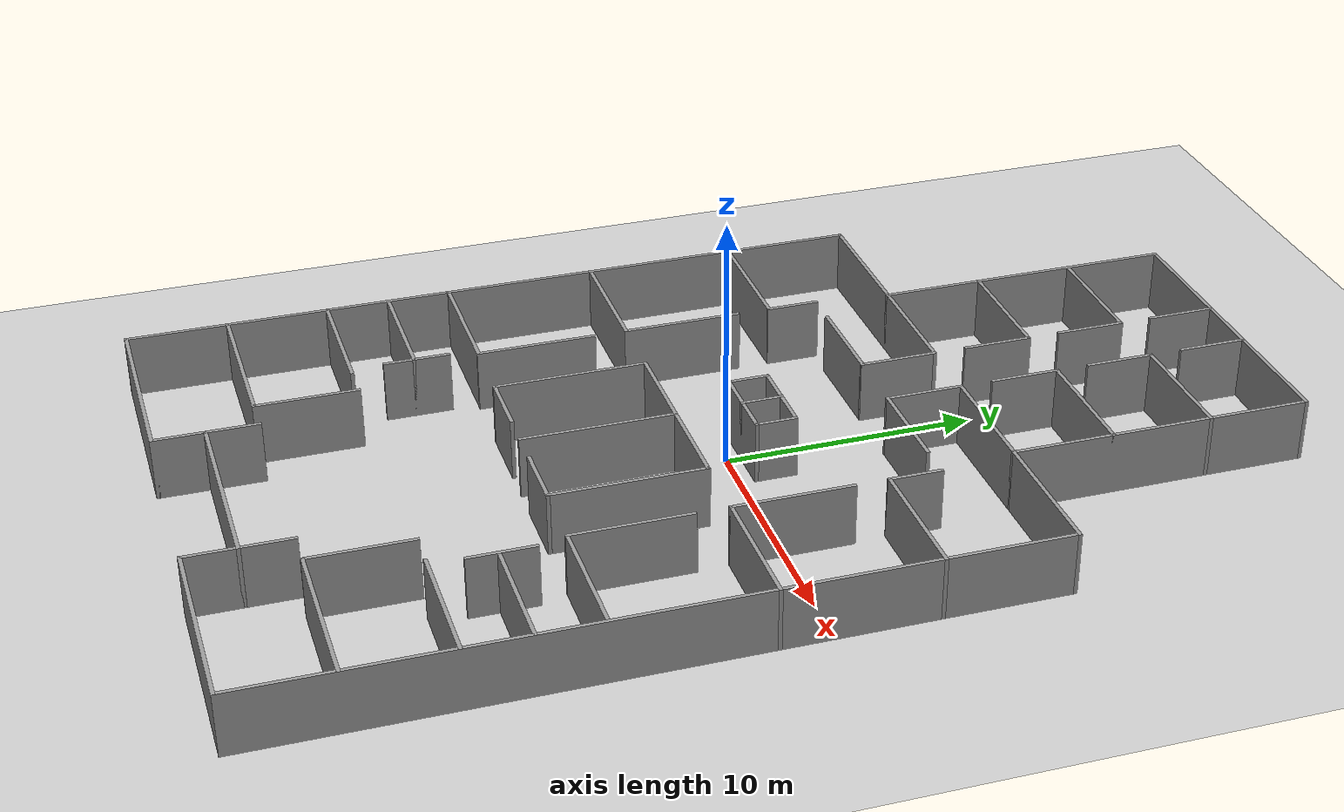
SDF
<sdf version="1.6">
 <world name="default">
  <light name="sun" type="directional">
   <pose>0 0 10 0 -0 0</pose>
   <diffuse>0.8 0.8 0.8 1</diffuse>
   <specular>0.2 0.2 0.2 1</specular>
   <attenuation>
    <range>1000</range>
    <constant>0.9</constant>
    <linear>0.01</linear>
    <quadratic>0.001</quadratic>
   </attenuation>
   <direction>-0.5 0.1 -0.9</direction>
  </light>
  <model name="ground_plane">
   <static>1</static>
   <link name="link">
    <collision name="collision">
     <geometry><plane><normal>0 0 1</normal><size>100 100</size></plane></geometry>
     <surface>
      <contact><collide_bitmask>65535</collide_bitmask></contact>
      <friction><ode><mu>100</mu><mu2>50</mu2></ode></friction>
     </surface>
    </collision>
    <visual name="visual">
     <cast_shadows>0</cast_shadows>
     <geometry><plane><normal>0 0 1</normal><size>100 100</size></plane></geometry>
     <material>
      <script><uri>file://media/materials/scripts/gazebo.material</uri><name>Gazebo/Grey</name></script>
     </material>
    </visual>
   </link>
  </model>
  <gravity>0 0 -9.8</gravity>
  <magnetic_field>6e-06 2.3e-05 -4.2e-05</magnetic_field>
  <atmosphere type="adiabatic"/>
  <physics name="default_physics" default="0" type="ode">
   <max_step_size>0.001</max_step_size>
   <real_time_factor>1</real_time_factor>
   <real_time_update_rate>1000</real_time_update_rate>
  </physics>
  <scene><ambient>0.4 0.4 0.4 1</ambient><background>0.7 0.7 0.7 1</background><shadows>1</shadows></scene>
  <audio><device>default</device></audio>
  <spherical_coordinates>
   <surface_model>EARTH_WGS84</surface_model>
   <latitude_deg>0</latitude_deg>
   <longitude_deg>0</longitude_deg>
   <elevation>0</elevation>
   <heading_deg>0</heading_deg>
  </spherical_coordinates>
  <model name="hospital_02">
   <link name="Wall_107">
    <collision name="Wall_107_Collision">
     <geometry><box><size>6.15 0.15 2.5</size></box></geometry>
     <pose>0 0 1.25 0 -0 0</pose>
    </collision>
    <visual name="Wall_107_Visual">
     <pose>0 0 1.25 0 -0 0</pose>
     <geometry><box><size>6.15 0.15 2.5</size></box></geometry>
     <material>
      <script><uri>file://media/materials/scripts/gazebo.material</uri><name>Gazebo/Grey</name></script>
      <ambient>1 1 1 1</ambient>
     </material>
     <meta><layer>0</layer></meta>
    </visual>
    <pose>-4 -5 0 0 -0 -1.5708</pose>
   </link>
   <link name="Wall_109">
    <collision name="Wall_109_Collision">
     <geometry><box><size>2.8 0.15 2.5</size></box></geometry>
     <pose>0 0 1.25 0 -0 0</pose>
    </collision>
    <visual name="Wall_109_Visual">
     <pose>0 0 1.25 0 -0 0</pose>
     <geometry><box><size>2.8 0.15 2.5</size></box></geometry>
     <material>
      <script><uri>file://media/materials/scripts/gazebo.material</uri><name>Gazebo/Grey</name></script>
      <ambient>1 1 1 1</ambient>
     </material>
     <meta><layer>0</layer></meta>
    </visual>
    <pose>-2.675 -8 0 0 -0 0</pose>
   </link>
   <link name="Wall_111">
    <collision name="Wall_111_Collision">
     <geometry><box><size>6.15 0.15 2.5</size></box></geometry>
     <pose>0 0 1.25 0 -0 0</pose>
    </collision>
    <visual name="Wall_111_Visual">
     <pose>0 0 1.25 0 -0 0</pose>
     <geometry><box><size>6.15 0.15 2.5</size></box></geometry>
     <material>
      <script><uri>file://media/materials/scripts/gazebo.material</uri><name>Gazebo/Grey</name></script>
      <ambient>1 1 1 1</ambient>
     </material>
     <meta><layer>0</layer></meta>
    </visual>
    <pose>4 -5 0 0 -0 -1.5708</pose>
   </link>
   <link name="Wall_113">
    <collision name="Wall_113_Collision">
     <geometry><box><size>2.8 0.15 2.5</size></box></geometry>
     <pose>0 0 1.25 0 -0 0</pose>
    </collision>
    <visual name="Wall_113_Visual">
     <pose>0 0 1.25 0 -0 0</pose>
     <geometry><box><size>2.8 0.15 2.5</size></box></geometry>
     <material>
      <script><uri>file://media/materials/scripts/gazebo.material</uri><name>Gazebo/Grey</name></script>
      <ambient>1 1 1 1</ambient>
     </material>
     <meta><layer>0</layer></meta>
    </visual>
    <pose>2.675 -8 0 0 -0 3.14159</pose>
   </link>
   <link name="Wall_117">
    <collision name="Wall_117_Collision">
     <geometry><box><size>3.45 0.15 2.5</size></box></geometry>
     <pose>0 0 1.25 0 -0 0</pose>
    </collision>
    <visual name="Wall_117_Visual">
     <pose>0 0 1.25 0 -0 0</pose>
     <geometry><box><size>3.45 0.15 2.5</size></box></geometry>
     <material>
      <script><uri>file://media/materials/scripts/gazebo.material</uri><name>Gazebo/Grey</name></script>
      <ambient>1 1 1 1</ambient>
     </material>
     <meta><layer>0</layer></meta>
    </visual>
    <pose>0 2.2 0 0 -0 0</pose>
   </link>
   <link name="Wall_119">
    <collision name="Wall_119_Collision">
     <geometry><box><size>3.45 0.15 2.5</size></box></geometry>
     <pose>0 0 1.25 0 -0 0</pose>
    </collision>
    <visual name="Wall_119_Visual">
     <pose>0 0 1.25 0 -0 0</pose>
     <geometry><box><size>3.45 0.15 2.5</size></box></geometry>
     <material>
      <script><uri>file://media/materials/scripts/gazebo.material</uri><name>Gazebo/Grey</name></script>
      <ambient>1 1 1 1</ambient>
     </material>
     <meta><layer>0</layer></meta>
    </visual>
    <pose>0 0.65 0 0 -0 0</pose>
   </link>
   <link name="Wall_121">
    <collision name="Wall_121_Collision">
     <geometry><box><size>1.7 0.15 2.5</size></box></geometry>
     <pose>0 0 1.25 0 -0 0</pose>
    </collision>
    <visual name="Wall_121_Visual">
     <pose>0 0 1.25 0 -0 0</pose>
     <geometry><box><size>1.7 0.15 2.5</size></box></geometry>
     <material>
      <script><uri>file://media/materials/scripts/gazebo.material</uri><name>Gazebo/Grey</name></script>
      <ambient>1 1 1 1</ambient>
     </material>
     <meta><layer>0</layer></meta>
    </visual>
    <pose>0 1.425 0 0 -0 -1.5708</pose>
   </link>
   <link name="Wall_123">
    <collision name="Wall_123_Collision">
     <geometry><box><size>1.7 0.15 2.5</size></box></geometry>
     <pose>0 0 1.25 0 -0 0</pose>
    </collision>
    <visual name="Wall_123_Visual">
     <pose>0 0 1.25 0 -0 0</pose>
     <geometry><box><size>1.7 0.15 2.5</size></box></geometry>
     <material>
      <script><uri>file://media/materials/scripts/gazebo.material</uri><name>Gazebo/Grey</name></script>
      <ambient>1 1 1 1</ambient>
     </material>
     <meta><layer>0</layer></meta>
    </visual>
    <pose>-1.65 1.425 0 0 -0 -1.5708</pose>
   </link>
   <link name="Wall_125">
    <collision name="Wall_125_Collision">
     <geometry><box><size>1.7 0.15 2.5</size></box></geometry>
     <pose>0 0 1.25 0 -0 0</pose>
    </collision>
    <visual name="Wall_125_Visual">
     <pose>0 0 1.25 0 -0 0</pose>
     <geometry><box><size>1.7 0.15 2.5</size></box></geometry>
     <material>
      <script><uri>file://media/materials/scripts/gazebo.material</uri><name>Gazebo/Grey</name></script>
      <ambient>1 1 1 1</ambient>
     </material>
     <meta><layer>0</layer></meta>
    </visual>
    <pose>1.65 1.425 0 0 -0 -1.5708</pose>
   </link>
   <link name="Wall_131">
    <collision name="Wall_131_Collision">
     <geometry><box><size>10.8 0.15 2.5</size></box></geometry>
     <pose>0 0 1.25 0 -0 0</pose>
    </collision>
    <visual name="Wall_131_Visual">
     <pose>0 0 1.25 0 -0 0</pose>
     <geometry><box><size>10.8 0.15 2.5</size></box></geometry>
     <material>
      <script><uri>file://media/materials/scripts/gazebo.material</uri><name>Gazebo/Grey</name></script>
      <ambient>1 1 1 1</ambient>
     </material>
     <meta><layer>0</layer></meta>
    </visual>
    <pose>-6.675 9 0 0 -0 0</pose>
   </link>
   <link name="Wall_133">
    <collision name="Wall_133_Collision">
     <geometry><box><size>10.8 0.15 2.5</size></box></geometry>
     <pose>0 0 1.25 0 -0 0</pose>
    </collision>
    <visual name="Wall_133_Visual">
     <pose>0 0 1.25 0 -0 0</pose>
     <geometry><box><size>10.8 0.15 2.5</size></box></geometry>
     <material>
      <script><uri>file://media/materials/scripts/gazebo.material</uri><name>Gazebo/Grey</name></script>
      <ambient>1 1 1 1</ambient>
     </material>
     <meta><layer>0</layer></meta>
    </visual>
    <pose>6.675 9 0 0 -0 3.14159</pose>
   </link>
   <link name="Wall_135">
    <collision name="Wall_135_Collision">
     <geometry><box><size>5.15 0.15 2.5</size></box></geometry>
     <pose>0 0 1.25 0 -0 0</pose>
    </collision>
    <visual name="Wall_135_Visual">
     <pose>0 0 1.25 0 -0 0</pose>
     <geometry><box><size>5.15 0.15 2.5</size></box></geometry>
     <material>
      <script><uri>file://media/materials/scripts/gazebo.material</uri><name>Gazebo/Grey</name></script>
      <ambient>1 1 1 1</ambient>
     </material>
     <meta><layer>0</layer></meta>
    </visual>
    <pose>-3.85 13 0 0 -0 0</pose>
   </link>
   <link name="Wall_137">
    <collision name="Wall_137_Collision">
     <geometry><box><size>4.15 0.15 2.5</size></box></geometry>
     <pose>0 0 1.25 0 -0 0</pose>
    </collision>
    <visual name="Wall_137_Visual">
     <pose>0 0 1.25 0 -0 0</pose>
     <geometry><box><size>4.15 0.15 2.5</size></box></geometry>
     <material>
      <script><uri>file://media/materials/scripts/gazebo.material</uri><name>Gazebo/Grey</name></script>
      <ambient>1 1 1 1</ambient>
     </material>
     <meta><layer>0</layer></meta>
    </visual>
    <pose>-6.35 11 0 0 -0 -1.5708</pose>
   </link>
   <link name="Wall_139">
    <collision name="Wall_139_Collision">
     <geometry><box><size>2.8 0.15 2.5</size></box></geometry>
     <pose>0 0 1.25 0 -0 0</pose>
    </collision>
    <visual name="Wall_139_Visual">
     <pose>0 0 1.25 0 -0 0</pose>
     <geometry><box><size>2.8 0.15 2.5</size></box></geometry>
     <material>
      <script><uri>file://media/materials/scripts/gazebo.material</uri><name>Gazebo/Grey</name></script>
      <ambient>1 1 1 1</ambient>
     </material>
     <meta><layer>0</layer></meta>
    </visual>
    <pose>-1.35 11.675 0 0 -0 -1.5708</pose>
   </link>
   <link name="Wall_143">
    <collision name="Wall_143_Collision">
     <geometry><box><size>5.15 0.15 2.5</size></box></geometry>
     <pose>0 0 1.25 0 -0 0</pose>
    </collision>
    <visual name="Wall_143_Visual">
     <pose>0 0 1.25 0 -0 0</pose>
     <geometry><box><size>5.15 0.15 2.5</size></box></geometry>
     <material>
      <script><uri>file://media/materials/scripts/gazebo.material</uri><name>Gazebo/Grey</name></script>
      <ambient>1 1 1 1</ambient>
     </material>
     <meta><layer>0</layer></meta>
    </visual>
    <pose>-3.85 17 0 0 -0 0</pose>
   </link>
   <link name="Wall_145">
    <collision name="Wall_145_Collision">
     <geometry><box><size>2.8 0.15 2.5</size></box></geometry>
     <pose>0 0 1.25 0 -0 0</pose>
    </collision>
    <visual name="Wall_145_Visual">
     <pose>0 0 1.25 0 -0 0</pose>
     <geometry><box><size>2.8 0.15 2.5</size></box></geometry>
     <material>
      <script><uri>file://media/materials/scripts/gazebo.material</uri><name>Gazebo/Grey</name></script>
      <ambient>1 1 1 1</ambient>
     </material>
     <meta><layer>0</layer></meta>
    </visual>
    <pose>-1.35 15.675 0 0 -0 -1.5708</pose>
   </link>
   <link name="Wall_149">
    <collision name="Wall_149_Collision">
     <geometry><box><size>12.85 0.15 2.5</size></box></geometry>
     <pose>0 0 1.25 0 -0 0</pose>
    </collision>
    <visual name="Wall_149_Visual">
     <pose>0 0 1.25 0 -0 0</pose>
     <geometry><box><size>12.85 0.15 2.5</size></box></geometry>
     <material>
      <script><uri>file://media/materials/scripts/gazebo.material</uri><name>Gazebo/Grey</name></script>
      <ambient>1 1 1 1</ambient>
     </material>
     <meta><layer>0</layer></meta>
    </visual>
    <pose>0 21 0 0 -0 0</pose>
   </link>
   <link name="Wall_151">
    <collision name="Wall_151_Collision">
     <geometry><box><size>2.8 0.15 2.5</size></box></geometry>
     <pose>0 0 1.25 0 -0 0</pose>
    </collision>
    <visual name="Wall_151_Visual">
     <pose>0 0 1.25 0 -0 0</pose>
     <geometry><box><size>2.8 0.15 2.5</size></box></geometry>
     <material>
      <script><uri>file://media/materials/scripts/gazebo.material</uri><name>Gazebo/Grey</name></script>
      <ambient>1 1 1 1</ambient>
     </material>
     <meta><layer>0</layer></meta>
    </visual>
    <pose>-1.35 19.675 0 0 -0 -1.5708</pose>
   </link>
   <link name="Wall_153">
    <collision name="Wall_153_Collision">
     <geometry><box><size>12.15 0.15 2.5</size></box></geometry>
     <pose>0 0 1.25 0 -0 0</pose>
    </collision>
    <visual name="Wall_153_Visual">
     <pose>0 0 1.25 0 -0 0</pose>
     <geometry><box><size>12.15 0.15 2.5</size></box></geometry>
     <material>
      <script><uri>file://media/materials/scripts/gazebo.material</uri><name>Gazebo/Grey</name></script>
      <ambient>1 1 1 1</ambient>
     </material>
     <meta><layer>0</layer></meta>
    </visual>
    <pose>6.35 15 0 0 -0 1.5708</pose>
   </link>
   <link name="Wall_155">
    <collision name="Wall_155_Collision">
     <geometry><box><size>5.15 0.15 2.5</size></box></geometry>
     <pose>0 0 1.25 0 -0 0</pose>
    </collision>
    <visual name="Wall_155_Visual">
     <pose>0 0 1.25 0 -0 0</pose>
     <geometry><box><size>5.15 0.15 2.5</size></box></geometry>
     <material>
      <script><uri>file://media/materials/scripts/gazebo.material</uri><name>Gazebo/Grey</name></script>
      <ambient>1 1 1 1</ambient>
     </material>
     <meta><layer>0</layer></meta>
    </visual>
    <pose>3.85 13 0 0 -0 0</pose>
   </link>
   <link name="Wall_157">
    <collision name="Wall_157_Collision">
     <geometry><box><size>5.15 0.15 2.5</size></box></geometry>
     <pose>0 0 1.25 0 -0 0</pose>
    </collision>
    <visual name="Wall_157_Visual">
     <pose>0 0 1.25 0 -0 0</pose>
     <geometry><box><size>5.15 0.15 2.5</size></box></geometry>
     <material>
      <script><uri>file://media/materials/scripts/gazebo.material</uri><name>Gazebo/Grey</name></script>
      <ambient>1 1 1 1</ambient>
     </material>
     <meta><layer>0</layer></meta>
    </visual>
    <pose>3.85 17 0 0 -0 0</pose>
   </link>
   <link name="Wall_159">
    <collision name="Wall_159_Collision">
     <geometry><box><size>2.8 0.15 2.5</size></box></geometry>
     <pose>0 0 1.25 0 -0 0</pose>
    </collision>
    <visual name="Wall_159_Visual">
     <pose>0 0 1.25 0 -0 0</pose>
     <geometry><box><size>2.8 0.15 2.5</size></box></geometry>
     <material>
      <script><uri>file://media/materials/scripts/gazebo.material</uri><name>Gazebo/Grey</name></script>
      <ambient>1 1 1 1</ambient>
     </material>
     <meta><layer>0</layer></meta>
    </visual>
    <pose>1.35 11.675 0 0 -0 -1.5708</pose>
   </link>
   <link name="Wall_161">
    <collision name="Wall_161_Collision">
     <geometry><box><size>2.8 0.15 2.5</size></box></geometry>
     <pose>0 0 1.25 0 -0 0</pose>
    </collision>
    <visual name="Wall_161_Visual">
     <pose>0 0 1.25 0 -0 0</pose>
     <geometry><box><size>2.8 0.15 2.5</size></box></geometry>
     <material>
      <script><uri>file://media/materials/scripts/gazebo.material</uri><name>Gazebo/Grey</name></script>
      <ambient>1 1 1 1</ambient>
     </material>
     <meta><layer>0</layer></meta>
    </visual>
    <pose>1.35 15.675 0 0 -0 -1.5708</pose>
   </link>
   <link name="Wall_163">
    <collision name="Wall_163_Collision">
     <geometry><box><size>2.8 0.15 2.5</size></box></geometry>
     <pose>0 0 1.25 0 -0 0</pose>
    </collision>
    <visual name="Wall_163_Visual">
     <pose>0 0 1.25 0 -0 0</pose>
     <geometry><box><size>2.8 0.15 2.5</size></box></geometry>
     <material>
      <script><uri>file://media/materials/scripts/gazebo.material</uri><name>Gazebo/Grey</name></script>
      <ambient>1 1 1 1</ambient>
     </material>
     <meta><layer>0</layer></meta>
    </visual>
    <pose>1.35 19.675 0 0 -0 -1.5708</pose>
   </link>
   <link name="Wall_165">
    <collision name="Wall_165_Collision">
     <geometry><box><size>8.15 0.15 2.5</size></box></geometry>
     <pose>0 0 1.25 0 -0 0</pose>
    </collision>
    <visual name="Wall_165_Visual">
     <pose>0 0 1.25 0 -0 0</pose>
     <geometry><box><size>8.15 0.15 2.5</size></box></geometry>
     <material>
      <script><uri>file://media/materials/scripts/gazebo.material</uri><name>Gazebo/Grey</name></script>
      <ambient>1 1 1 1</ambient>
     </material>
     <meta><layer>0</layer></meta>
    </visual>
    <pose>-6.35 17 0 0 -0 -1.5708</pose>
   </link>
   <link name="Wall_19">
    <collision name="Wall_19_Collision">
     <geometry><box><size>8.15 0.15 2.5</size></box></geometry>
     <pose>0 0 1.25 0 -0 0</pose>
    </collision>
    <visual name="Wall_19_Visual">
     <pose>0 0 1.25 0 -0 0</pose>
     <geometry><box><size>8.15 0.15 2.5</size></box></geometry>
     <material>
      <script><uri>file://media/materials/scripts/gazebo.material</uri><name>Gazebo/Grey</name></script>
      <ambient>1 1 1 1</ambient>
     </material>
     <meta><layer>0</layer></meta>
    </visual>
    <pose>0 -19 0 0 -0 0</pose>
   </link>
   <link name="Wall_21">
    <collision name="Wall_21_Collision">
     <geometry><box><size>4.15 0.15 2.5</size></box></geometry>
     <pose>0 0 1.25 0 -0 0</pose>
    </collision>
    <visual name="Wall_21_Visual">
     <pose>0 0 1.25 0 -0 0</pose>
     <geometry><box><size>4.15 0.15 2.5</size></box></geometry>
     <material>
      <script><uri>file://media/materials/scripts/gazebo.material</uri><name>Gazebo/Grey</name></script>
      <ambient>1 1 1 1</ambient>
     </material>
     <meta><layer>0</layer></meta>
    </visual>
    <pose>-4 -19 0 0 -0 1.5708</pose>
   </link>
   <link name="Wall_23">
    <collision name="Wall_23_Collision">
     <geometry><box><size>8.15 0.15 2.5</size></box></geometry>
     <pose>0 0 1.25 0 -0 0</pose>
    </collision>
    <visual name="Wall_23_Visual">
     <pose>0 0 1.25 0 -0 0</pose>
     <geometry><box><size>8.15 0.15 2.5</size></box></geometry>
     <material>
      <script><uri>file://media/materials/scripts/gazebo.material</uri><name>Gazebo/Grey</name></script>
      <ambient>1 1 1 1</ambient>
     </material>
     <meta><layer>0</layer></meta>
    </visual>
    <pose>-8 -21 0 0 -0 3.14159</pose>
   </link>
   <link name="Wall_26">
    <collision name="Wall_26_Collision">
     <geometry><box><size>6.8 0.15 2.5</size></box></geometry>
     <pose>0 0 1.25 0 -0 0</pose>
    </collision>
    <visual name="Wall_26_Visual">
     <pose>0 0 1.25 0 -0 0</pose>
     <geometry><box><size>6.8 0.15 2.5</size></box></geometry>
     <material>
      <script><uri>file://media/materials/scripts/gazebo.material</uri><name>Gazebo/Grey</name></script>
      <ambient>1 1 1 1</ambient>
     </material>
     <meta><layer>0</layer></meta>
    </visual>
    <pose>-8.675 -17 0 0 -0 0</pose>
   </link>
   <link name="Wall_30">
    <collision name="Wall_30_Collision">
     <geometry><box><size>4.15 0.15 2.5</size></box></geometry>
     <pose>0 0 1.25 0 -0 0</pose>
    </collision>
    <visual name="Wall_30_Visual">
     <pose>0 0 1.25 0 -0 0</pose>
     <geometry><box><size>4.15 0.15 2.5</size></box></geometry>
     <material>
      <script><uri>file://media/materials/scripts/gazebo.material</uri><name>Gazebo/Grey</name></script>
      <ambient>1 1 1 1</ambient>
     </material>
     <meta><layer>0</layer></meta>
    </visual>
    <pose>-5.35 -15 0 0 -0 1.5708</pose>
   </link>
   <link name="Wall_32">
    <collision name="Wall_32_Collision">
     <geometry><box><size>5.45 0.15 2.5</size></box></geometry>
     <pose>0 0 1.25 0 -0 0</pose>
    </collision>
    <visual name="Wall_32_Visual">
     <pose>0 0 1.25 0 -0 0</pose>
     <geometry><box><size>5.45 0.15 2.5</size></box></geometry>
     <material>
      <script><uri>file://media/materials/scripts/gazebo.material</uri><name>Gazebo/Grey</name></script>
      <ambient>1 1 1 1</ambient>
     </material>
     <meta><layer>0</layer></meta>
    </visual>
    <pose>-9.35 -13 0 0 -0 0</pose>
   </link>
   <link name="Wall_37">
    <collision name="Wall_37_Collision">
     <geometry><box><size>5.15 0.15 2.5</size></box></geometry>
     <pose>0 0 1.25 0 -0 0</pose>
    </collision>
    <visual name="Wall_37_Visual">
     <pose>0 0 1.25 0 -0 0</pose>
     <geometry><box><size>5.15 0.15 2.5</size></box></geometry>
     <material>
      <script><uri>file://media/materials/scripts/gazebo.material</uri><name>Gazebo/Grey</name></script>
      <ambient>1 1 1 1</ambient>
     </material>
     <meta><layer>0</layer></meta>
    </visual>
    <pose>-9.5 -10.5 0 0 -0 0</pose>
   </link>
   <link name="Wall_39">
    <collision name="Wall_39_Collision">
     <geometry><box><size>2.65 0.15 2.5</size></box></geometry>
     <pose>0 0 1.25 0 -0 0</pose>
    </collision>
    <visual name="Wall_39_Visual">
     <pose>0 0 1.25 0 -0 0</pose>
     <geometry><box><size>2.65 0.15 2.5</size></box></geometry>
     <material>
      <script><uri>file://media/materials/scripts/gazebo.material</uri><name>Gazebo/Grey</name></script>
      <ambient>1 1 1 1</ambient>
     </material>
     <meta><layer>0</layer></meta>
    </visual>
    <pose>-7 -10.4 0 0 -0 1.5708</pose>
   </link>
   <link name="Wall_43">
    <collision name="Wall_43_Collision">
     <geometry><box><size>5.45 0.15 2.5</size></box></geometry>
     <pose>0 0 1.25 0 -0 0</pose>
    </collision>
    <visual name="Wall_43_Visual">
     <pose>0 0 1.25 0 -0 0</pose>
     <geometry><box><size>5.45 0.15 2.5</size></box></geometry>
     <material>
      <script><uri>file://media/materials/scripts/gazebo.material</uri><name>Gazebo/Grey</name></script>
      <ambient>1 1 1 1</ambient>
     </material>
     <meta><layer>0</layer></meta>
    </visual>
    <pose>-9.35 -8 0 0 -0 0</pose>
   </link>
   <link name="Wall_45">
    <collision name="Wall_45_Collision">
     <geometry><box><size>4.8 0.15 2.5</size></box></geometry>
     <pose>0 0 1.25 0 -0 0</pose>
    </collision>
    <visual name="Wall_45_Visual">
     <pose>0 0 1.25 0 -0 0</pose>
     <geometry><box><size>4.8 0.15 2.5</size></box></geometry>
     <material>
      <script><uri>file://media/materials/scripts/gazebo.material</uri><name>Gazebo/Grey</name></script>
      <ambient>1 1 1 1</ambient>
     </material>
     <meta><layer>0</layer></meta>
    </visual>
    <pose>-6.7 -5.675 0 0 -0 1.5708</pose>
   </link>
   <link name="Wall_47">
    <collision name="Wall_47_Collision">
     <geometry><box><size>5.45 0.15 2.5</size></box></geometry>
     <pose>0 0 1.25 0 -0 0</pose>
    </collision>
    <visual name="Wall_47_Visual">
     <pose>0 0 1.25 0 -0 0</pose>
     <geometry><box><size>5.45 0.15 2.5</size></box></geometry>
     <material>
      <script><uri>file://media/materials/scripts/gazebo.material</uri><name>Gazebo/Grey</name></script>
      <ambient>1 1 1 1</ambient>
     </material>
     <meta><layer>0</layer></meta>
    </visual>
    <pose>-9.35 -2 0 0 -0 0</pose>
   </link>
   <link name="Wall_49">
    <collision name="Wall_49_Collision">
     <geometry><box><size>4.8 0.15 2.5</size></box></geometry>
     <pose>0 0 1.25 0 -0 0</pose>
    </collision>
    <visual name="Wall_49_Visual">
     <pose>0 0 1.25 0 -0 0</pose>
     <geometry><box><size>4.8 0.15 2.5</size></box></geometry>
     <material>
      <script><uri>file://media/materials/scripts/gazebo.material</uri><name>Gazebo/Grey</name></script>
      <ambient>1 1 1 1</ambient>
     </material>
     <meta><layer>0</layer></meta>
    </visual>
    <pose>-6.7 0.325001 0 0 -0 1.5708</pose>
   </link>
   <link name="Wall_51">
    <collision name="Wall_51_Collision">
     <geometry><box><size>5.45 0.15 2.5</size></box></geometry>
     <pose>0 0 1.25 0 -0 0</pose>
    </collision>
    <visual name="Wall_51_Visual">
     <pose>0 0 1.25 0 -0 0</pose>
     <geometry><box><size>5.45 0.15 2.5</size></box></geometry>
     <material>
      <script><uri>file://media/materials/scripts/gazebo.material</uri><name>Gazebo/Grey</name></script>
      <ambient>1 1 1 1</ambient>
     </material>
     <meta><layer>0</layer></meta>
    </visual>
    <pose>-9.35 4 0 0 -0 0</pose>
   </link>
   <link name="Wall_53">
    <collision name="Wall_53_Collision">
     <geometry><box><size>2.15 0.15 2.5</size></box></geometry>
     <pose>0 0 1.25 0 -0 0</pose>
    </collision>
    <visual name="Wall_53_Visual">
     <pose>0 0 1.25 0 -0 0</pose>
     <geometry><box><size>2.15 0.15 2.5</size></box></geometry>
     <material>
      <script><uri>file://media/materials/scripts/gazebo.material</uri><name>Gazebo/Grey</name></script>
      <ambient>1 1 1 1</ambient>
     </material>
     <meta><layer>0</layer></meta>
    </visual>
    <pose>-6.7 5 0 0 -0 1.5708</pose>
   </link>
   <link name="Wall_55">
    <collision name="Wall_55_Collision">
     <geometry><box><size>4.15 0.15 2.5</size></box></geometry>
     <pose>0 0 1.25 0 -0 0</pose>
    </collision>
    <visual name="Wall_55_Visual">
     <pose>0 0 1.25 0 -0 0</pose>
     <geometry><box><size>4.15 0.15 2.5</size></box></geometry>
     <material>
      <script><uri>file://media/materials/scripts/gazebo.material</uri><name>Gazebo/Grey</name></script>
      <ambient>1 1 1 1</ambient>
     </material>
     <meta><layer>0</layer></meta>
    </visual>
    <pose>-3.35 6 0 0 -0 0</pose>
   </link>
   <link name="Wall_57">
    <collision name="Wall_57_Collision">
     <geometry><box><size>3.15 0.15 2.5</size></box></geometry>
     <pose>0 0 1.25 0 -0 0</pose>
    </collision>
    <visual name="Wall_57_Visual">
     <pose>0 0 1.25 0 -0 0</pose>
     <geometry><box><size>3.15 0.15 2.5</size></box></geometry>
     <material>
      <script><uri>file://media/materials/scripts/gazebo.material</uri><name>Gazebo/Grey</name></script>
      <ambient>1 1 1 1</ambient>
     </material>
     <meta><layer>0</layer></meta>
    </visual>
    <pose>-1.35 7.5 0 0 -0 1.5708</pose>
   </link>
   <link name="Wall_61">
    <collision name="Wall_61_Collision">
     <geometry><box><size>30.15 0.15 2.5</size></box></geometry>
     <pose>0 0 1.25 0 -0 0</pose>
    </collision>
    <visual name="Wall_61_Visual">
     <pose>0 0 1.25 0 -0 0</pose>
     <geometry><box><size>30.15 0.15 2.5</size></box></geometry>
     <material>
      <script><uri>file://media/materials/scripts/gazebo.material</uri><name>Gazebo/Grey</name></script>
      <ambient>1 1 1 1</ambient>
     </material>
     <meta><layer>0</layer></meta>
    </visual>
    <pose>-12 -6 0 0 -0 1.5708</pose>
   </link>
   <link name="Wall_63">
    <collision name="Wall_63_Collision">
     <geometry><box><size>4.15 0.15 2.5</size></box></geometry>
     <pose>0 0 1.25 0 -0 0</pose>
    </collision>
    <visual name="Wall_63_Visual">
     <pose>0 0 1.25 0 -0 0</pose>
     <geometry><box><size>4.15 0.15 2.5</size></box></geometry>
     <material>
      <script><uri>file://media/materials/scripts/gazebo.material</uri><name>Gazebo/Grey</name></script>
      <ambient>1 1 1 1</ambient>
     </material>
     <meta><layer>0</layer></meta>
    </visual>
    <pose>4 -19 0 0 -0 -1.5708</pose>
   </link>
   <link name="Wall_65">
    <collision name="Wall_65_Collision">
     <geometry><box><size>8.15 0.15 2.5</size></box></geometry>
     <pose>0 0 1.25 0 -0 0</pose>
    </collision>
    <visual name="Wall_65_Visual">
     <pose>0 0 1.25 0 -0 0</pose>
     <geometry><box><size>8.15 0.15 2.5</size></box></geometry>
     <material>
      <script><uri>file://media/materials/scripts/gazebo.material</uri><name>Gazebo/Grey</name></script>
      <ambient>1 1 1 1</ambient>
     </material>
     <meta><layer>0</layer></meta>
    </visual>
    <pose>8 -21 0 0 -0 0</pose>
   </link>
   <link name="Wall_67">
    <collision name="Wall_67_Collision">
     <geometry><box><size>30.15 0.15 2.5</size></box></geometry>
     <pose>0 0 1.25 0 -0 0</pose>
    </collision>
    <visual name="Wall_67_Visual">
     <pose>0 0 1.25 0 -0 0</pose>
     <geometry><box><size>30.15 0.15 2.5</size></box></geometry>
     <material>
      <script><uri>file://media/materials/scripts/gazebo.material</uri><name>Gazebo/Grey</name></script>
      <ambient>1 1 1 1</ambient>
     </material>
     <meta><layer>0</layer></meta>
    </visual>
    <pose>12 -6 0 0 -0 1.5708</pose>
   </link>
   <link name="Wall_69">
    <collision name="Wall_69_Collision">
     <geometry><box><size>6.8 0.15 2.5</size></box></geometry>
     <pose>0 0 1.25 0 -0 0</pose>
    </collision>
    <visual name="Wall_69_Visual">
     <pose>0 0 1.25 0 -0 0</pose>
     <geometry><box><size>6.8 0.15 2.5</size></box></geometry>
     <material>
      <script><uri>file://media/materials/scripts/gazebo.material</uri><name>Gazebo/Grey</name></script>
      <ambient>1 1 1 1</ambient>
     </material>
     <meta><layer>0</layer></meta>
    </visual>
    <pose>8.675 -17 0 0 -0 0</pose>
   </link>
   <link name="Wall_71">
    <collision name="Wall_71_Collision">
     <geometry><box><size>4.15 0.15 2.5</size></box></geometry>
     <pose>0 0 1.25 0 -0 0</pose>
    </collision>
    <visual name="Wall_71_Visual">
     <pose>0 0 1.25 0 -0 0</pose>
     <geometry><box><size>4.15 0.15 2.5</size></box></geometry>
     <material>
      <script><uri>file://media/materials/scripts/gazebo.material</uri><name>Gazebo/Grey</name></script>
      <ambient>1 1 1 1</ambient>
     </material>
     <meta><layer>0</layer></meta>
    </visual>
    <pose>5.35 -15 0 0 -0 1.5708</pose>
   </link>
   <link name="Wall_73">
    <collision name="Wall_73_Collision">
     <geometry><box><size>5.45 0.15 2.5</size></box></geometry>
     <pose>0 0 1.25 0 -0 0</pose>
    </collision>
    <visual name="Wall_73_Visual">
     <pose>0 0 1.25 0 -0 0</pose>
     <geometry><box><size>5.45 0.15 2.5</size></box></geometry>
     <material>
      <script><uri>file://media/materials/scripts/gazebo.material</uri><name>Gazebo/Grey</name></script>
      <ambient>1 1 1 1</ambient>
     </material>
     <meta><layer>0</layer></meta>
    </visual>
    <pose>9.35 -13 0 0 -0 0</pose>
   </link>
   <link name="Wall_75">
    <collision name="Wall_75_Collision">
     <geometry><box><size>5.15 0.15 2.5</size></box></geometry>
     <pose>0 0 1.25 0 -0 0</pose>
    </collision>
    <visual name="Wall_75_Visual">
     <pose>0 0 1.25 0 -0 0</pose>
     <geometry><box><size>5.15 0.15 2.5</size></box></geometry>
     <material>
      <script><uri>file://media/materials/scripts/gazebo.material</uri><name>Gazebo/Grey</name></script>
      <ambient>1 1 1 1</ambient>
     </material>
     <meta><layer>0</layer></meta>
    </visual>
    <pose>9.5 -10.5 0 0 -0 0</pose>
   </link>
   <link name="Wall_77">
    <collision name="Wall_77_Collision">
     <geometry><box><size>2.65 0.15 2.5</size></box></geometry>
     <pose>0 0 1.25 0 -0 0</pose>
    </collision>
    <visual name="Wall_77_Visual">
     <pose>0 0 1.25 0 -0 0</pose>
     <geometry><box><size>2.65 0.15 2.5</size></box></geometry>
     <material>
      <script><uri>file://media/materials/scripts/gazebo.material</uri><name>Gazebo/Grey</name></script>
      <ambient>1 1 1 1</ambient>
     </material>
     <meta><layer>0</layer></meta>
    </visual>
    <pose>7 -10.4 0 0 -0 1.5708</pose>
   </link>
   <link name="Wall_79">
    <collision name="Wall_79_Collision">
     <geometry><box><size>5.45 0.15 2.5</size></box></geometry>
     <pose>0 0 1.25 0 -0 0</pose>
    </collision>
    <visual name="Wall_79_Visual">
     <pose>0 0 1.25 0 -0 0</pose>
     <geometry><box><size>5.45 0.15 2.5</size></box></geometry>
     <material>
      <script><uri>file://media/materials/scripts/gazebo.material</uri><name>Gazebo/Grey</name></script>
      <ambient>1 1 1 1</ambient>
     </material>
     <meta><layer>0</layer></meta>
    </visual>
    <pose>9.35 -8 0 0 -0 3.14159</pose>
   </link>
   <link name="Wall_81">
    <collision name="Wall_81_Collision">
     <geometry><box><size>4.8 0.15 2.5</size></box></geometry>
     <pose>0 0 1.25 0 -0 0</pose>
    </collision>
    <visual name="Wall_81_Visual">
     <pose>0 0 1.25 0 -0 0</pose>
     <geometry><box><size>4.8 0.15 2.5</size></box></geometry>
     <material>
      <script><uri>file://media/materials/scripts/gazebo.material</uri><name>Gazebo/Grey</name></script>
      <ambient>1 1 1 1</ambient>
     </material>
     <meta><layer>0</layer></meta>
    </visual>
    <pose>6.7 -5.675 0 0 -0 1.5708</pose>
   </link>
   <link name="Wall_83">
    <collision name="Wall_83_Collision">
     <geometry><box><size>4.8 0.15 2.5</size></box></geometry>
     <pose>0 0 1.25 0 -0 0</pose>
    </collision>
    <visual name="Wall_83_Visual">
     <pose>0 0 1.25 0 -0 0</pose>
     <geometry><box><size>4.8 0.15 2.5</size></box></geometry>
     <material>
      <script><uri>file://media/materials/scripts/gazebo.material</uri><name>Gazebo/Grey</name></script>
      <ambient>1 1 1 1</ambient>
     </material>
     <meta><layer>0</layer></meta>
    </visual>
    <pose>6.7 0.325001 0 0 -0 1.5708</pose>
   </link>
   <link name="Wall_85">
    <collision name="Wall_85_Collision">
     <geometry><box><size>5.45 0.15 2.5</size></box></geometry>
     <pose>0 0 1.25 0 -0 0</pose>
    </collision>
    <visual name="Wall_85_Visual">
     <pose>0 0 1.25 0 -0 0</pose>
     <geometry><box><size>5.45 0.15 2.5</size></box></geometry>
     <material>
      <script><uri>file://media/materials/scripts/gazebo.material</uri><name>Gazebo/Grey</name></script>
      <ambient>1 1 1 1</ambient>
     </material>
     <meta><layer>0</layer></meta>
    </visual>
    <pose>9.35 -2 0 0 -0 0</pose>
   </link>
   <link name="Wall_87">
    <collision name="Wall_87_Collision">
     <geometry><box><size>2.15 0.15 2.5</size></box></geometry>
     <pose>0 0 1.25 0 -0 0</pose>
    </collision>
    <visual name="Wall_87_Visual">
     <pose>0 0 1.25 0 -0 0</pose>
     <geometry><box><size>2.15 0.15 2.5</size></box></geometry>
     <material>
      <script><uri>file://media/materials/scripts/gazebo.material</uri><name>Gazebo/Grey</name></script>
      <ambient>1 1 1 1</ambient>
     </material>
     <meta><layer>0</layer></meta>
    </visual>
    <pose>6.7 5 0 0 -0 1.5708</pose>
   </link>
   <link name="Wall_89">
    <collision name="Wall_89_Collision">
     <geometry><box><size>5.45 0.15 2.5</size></box></geometry>
     <pose>0 0 1.25 0 -0 0</pose>
    </collision>
    <visual name="Wall_89_Visual">
     <pose>0 0 1.25 0 -0 0</pose>
     <geometry><box><size>5.45 0.15 2.5</size></box></geometry>
     <material>
      <script><uri>file://media/materials/scripts/gazebo.material</uri><name>Gazebo/Grey</name></script>
      <ambient>1 1 1 1</ambient>
     </material>
     <meta><layer>0</layer></meta>
    </visual>
    <pose>9.35 4 0 0 -0 0</pose>
   </link>
   <link name="Wall_91">
    <collision name="Wall_91_Collision">
     <geometry><box><size>4.15 0.15 2.5</size></box></geometry>
     <pose>0 0 1.25 0 -0 0</pose>
    </collision>
    <visual name="Wall_91_Visual">
     <pose>0 0 1.25 0 -0 0</pose>
     <geometry><box><size>4.15 0.15 2.5</size></box></geometry>
     <material>
      <script><uri>file://media/materials/scripts/gazebo.material</uri><name>Gazebo/Grey</name></script>
      <ambient>1 1 1 1</ambient>
     </material>
     <meta><layer>0</layer></meta>
    </visual>
    <pose>3.35 6 0 0 -0 3.14159</pose>
   </link>
   <link name="Wall_93">
    <collision name="Wall_93_Collision">
     <geometry><box><size>3.15 0.15 2.5</size></box></geometry>
     <pose>0 0 1.25 0 -0 0</pose>
    </collision>
    <visual name="Wall_93_Visual">
     <pose>0 0 1.25 0 -0 0</pose>
     <geometry><box><size>3.15 0.15 2.5</size></box></geometry>
     <material>
      <script><uri>file://media/materials/scripts/gazebo.material</uri><name>Gazebo/Grey</name></script>
      <ambient>1 1 1 1</ambient>
     </material>
     <meta><layer>0</layer></meta>
    </visual>
    <pose>1.35 7.5 0 0 -0 1.5708</pose>
   </link>
   <link name="Wall_95">
    <collision name="Wall_95_Collision">
     <geometry><box><size>6.15 0.15 2.5</size></box></geometry>
     <pose>0 0 1.25 0 -0 0</pose>
    </collision>
    <visual name="Wall_95_Visual">
     <pose>0 0 1.25 0 -0 0</pose>
     <geometry><box><size>6.15 0.15 2.5</size></box></geometry>
     <material>
      <script><uri>file://media/materials/scripts/gazebo.material</uri><name>Gazebo/Grey</name></script>
      <ambient>1 1 1 1</ambient>
     </material>
     <meta><layer>0</layer></meta>
    </visual>
    <pose>0 -5 0 0 -0 1.5708</pose>
   </link>
   <link name="Wall_97">
    <collision name="Wall_97_Collision">
     <geometry><box><size>8.15 0.15 2.5</size></box></geometry>
     <pose>0 0 1.25 0 -0 0</pose>
    </collision>
    <visual name="Wall_97_Visual">
     <pose>0 0 1.25 0 -0 0</pose>
     <geometry><box><size>8.15 0.15 2.5</size></box></geometry>
     <material>
      <script><uri>file://media/materials/scripts/gazebo.material</uri><name>Gazebo/Grey</name></script>
      <ambient>1 1 1 1</ambient>
     </material>
     <meta><layer>0</layer></meta>
    </visual>
    <pose>0 -2 0 0 -0 0</pose>
   </link>
   <static>1</static>
  </model>
 </world>
</sdf>
